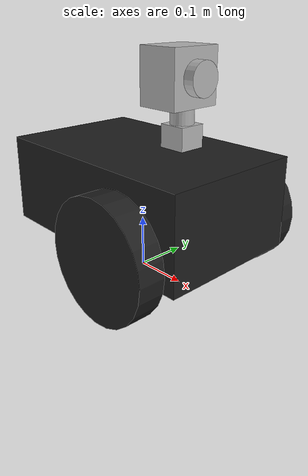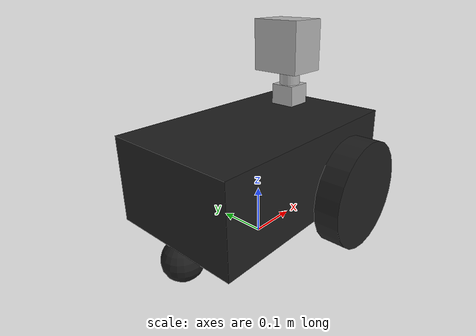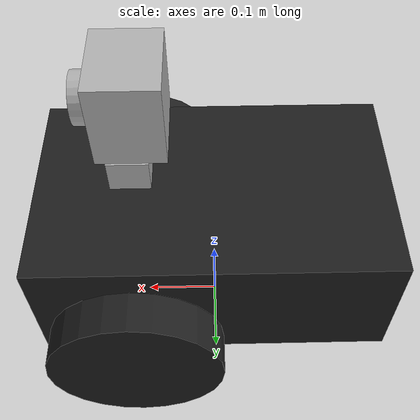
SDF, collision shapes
<?xml version="1.0" ?>
<sdf version="1.5">
  <model name="robot">
    <link name="base_link">
      <pose>0 0 0.16 0 0 0</pose>
      <inertial>
        <mass>5.67</mass>
        <inertia>
          <ixx>0.07</ixx>
          <iyy>0.08</iyy>
          <izz>0.10</izz>
          <ixy>0</ixy>
          <ixz>0</ixz>
          <iyz>0</iyz>
        </inertia>
      </inertial>
      <collision name="collision">
        <geometry>
          <box>
            <size>0.445 0.277 0.17</size>
          </box>
        </geometry>
      </collision>
      <collision name="castor_collision">
        <pose>-0.200 0 -0.12 0 0 0</pose>
        <geometry>
          <sphere>
            <radius>0.04</radius>
          </sphere>
        </geometry>
        <surface>
          <friction>
            <ode>
              <mu>0</mu>
              <mu2>0</mu2>
            </ode>
          </friction>
        </surface>
      </collision>
      <visual name="visual">
        <pose>0 0 0.04 0 0 0</pose>
        <geometry>
          <mesh>
            <uri>model://pioneer2dx_ros/meshes/chassis.dae</uri>
          </mesh>
        </geometry>
      </visual>
      <visual name="castor_visual">
        <pose>-0.200 0 -0.12 0 0 0</pose>
        <geometry>
          <sphere>
            <radius>0.04</radius>
          </sphere>
        </geometry>
        <material>
          <script>
            <uri>file://media/materials/scripts/gazebo.material</uri>
            <name>Gazebo/FlatBlack</name>
          </script>
        </material>
      </visual>
    </link>
    <link name="right_wheel">
      <pose>0.1 -.17 0.11 0 1.5707 1.5707</pose>
      <inertial>
        <mass>1.5</mass>
        <inertia>
          <ixx>0.0051</ixx>
          <iyy>0.0051</iyy>
          <izz>0.0090</izz>
          <ixy>0</ixy>
          <ixz>0</ixz>
          <iyz>0</iyz>
        </inertia>
      </inertial>
      <collision name="collision">
        <geometry>
          <cylinder>
            <radius>0.11</radius>
            <length>0.05</length>
          </cylinder>
        </geometry>
        <surface>
          <friction>
            <ode>
              <mu>1.0</mu>
              <mu2>1.0</mu2>
            </ode>
          </friction>
        </surface>
      </collision>
      <visual name="visual">
        <geometry>
          <cylinder>
            <radius>0.11</radius>
            <length>0.05</length>
          </cylinder>
        </geometry>
        <material>
          <script>
            <uri>file://media/materials/scripts/gazebo.material</uri>
            <name>Gazebo/FlatBlack</name>
          </script>
        </material>
      </visual>
    </link>
    <link name="left_wheel">
      <pose>0.1 .17 0.11 0 1.5707 1.5707</pose>
      <inertial>
        <mass>1.5</mass>
        <inertia>
          <ixx>0.0051</ixx>
          <iyy>0.0051</iyy>
          <izz>0.0090</izz>
          <ixy>0</ixy>
          <ixz>0</ixz>
          <iyz>0</iyz>
        </inertia>
      </inertial>
      <collision name="collision">
        <geometry>
          <cylinder>
            <radius>0.11</radius>
            <length>0.05</length>
          </cylinder>
        </geometry>
        <surface>
          <friction>
            <ode>
              <mu>1.0</mu>
              <mu2>1.0</mu2>
            </ode>
          </friction>
        </surface>
      </collision>
      <visual name="visual">
        <geometry>
          <cylinder>
            <radius>0.11</radius>
            <length>0.05</length>
          </cylinder>
        </geometry>
        <material>
          <script>
            <uri>file://media/materials/scripts/gazebo.material</uri>
            <name>Gazebo/FlatBlack</name>
          </script>
        </material>
      </visual>
    </link>
    <joint type="revolute" name="left_wheel_hinge">
      <pose>0 0 -0.03 0 0 0</pose>
      <child>left_wheel</child>
      <parent>base_link</parent>
      <axis>
        <xyz>0 1 0</xyz>
        <use_parent_model_frame>true</use_parent_model_frame>
      </axis>
    </joint>
    <joint type="revolute" name="right_wheel_hinge">
      <pose>0 0 0.03 0 0 0</pose>
      <child>right_wheel</child>
      <parent>base_link</parent>
      <axis>
        <xyz>0 1 0</xyz>
        <use_parent_model_frame>true</use_parent_model_frame>
      </axis>
    </joint>

<!-- Camera (hight is 100mm) -->
    <link name="camera_link">
      <pose>0.1 0 0.383 0 0 0</pose>
      <audio_sink /> <!-- Camera and microphone should be combined -->
      <inertial>
        <mass>0.1</mass>
        <inertia>
          <ixx>0.000166667</ixx>
          <iyy>0.000166667</iyy>
          <izz>0.000166667</izz>
        </inertia>
      </inertial>
      <collision name="collision-box">
        <pose>-0.01 0 0 0 0 0</pose>
        <geometry>
          <box>
            <size>0.08 0.1 0.1</size>
          </box>
        </geometry>
      </collision>
      <collision name="collision-lens">
        <pose>0.04 0 0 0 1.57 0</pose>
        <geometry>
          <cylinder>
            <radius>0.03</radius>
            <length>0.02</length>
          </cylinder>
        </geometry>
      </collision>
      <visual name="visual-box">
        <pose>-0.01 0 0 0 0 0</pose>
        <geometry>
          <box>
            <size>0.08 0.1 0.1</size>
          </box>
        </geometry>
        <material>
          <ambient>0.3 0.3 0.3 1</ambient>
          <diffuse>0.7 0.7 0.7 1</diffuse>
          <specular>0.1 0.1 0.1 1</specular>
          <emissive>0 0 0 0</emissive>
        </material>
      </visual>
      <visual name="visual-lens">
        <pose>0.04 0 0 0 1.57 0</pose>
        <geometry>
          <cylinder>
            <radius>0.03</radius>
            <length>0.02</length>
          </cylinder>
        </geometry>
        <material>
          <ambient>0 0 0 1</ambient>
          <diffuse>0 0 0 1</diffuse>
          <specular>0.1 0.1 0.1 1</specular>
          <emissive>0 0 0 0</emissive>
        </material>
      </visual>
<!-- RGB CAMERA -->
      <sensor type="camera" name="camera">
        <update_rate>20</update_rate>
        <visualize>false</visualize>
        <camera name="camera">
          <horizontal_fov>1.047</horizontal_fov>
          <image>
            <width>320</width>
            <height>240</height>
            <format>R8G8B8</format>
          </image>
          <clip>
            <near>0.1</near>
            <far>100</far>
          </clip>
          <!-- Noise is sampled independently per pixel on each frame.
               That pixel's noise value is added to each of its color
               channels, which at that point lie in the range [0,1]. -->
          <noise>
            <type>gaussian</type>
            <mean>0.0</mean>
            <stddev>0.007</stddev>
          </noise>
        </camera>
        <plugin name="camera_controller" filename="libgazebo_ros_camera.so">
          <alwaysOn>true</alwaysOn>
          <updateRate>0.0</updateRate>
          <cameraName>camera/rgb</cameraName>
          <imageTopicName>image_raw</imageTopicName>
          <cameraInfoTopicName>camera_info</cameraInfoTopicName>
          <frameName>camera_link</frameName>
          <hackBaseline>0.07</hackBaseline>
          <distortionK1>0.0</distortionK1>
          <distortionK2>0.0</distortionK2>
          <distortionK3>0.0</distortionK3>
          <distortionT1>0.0</distortionT1>
          <distortionT2>0.0</distortionT2>
        </plugin>
      </sensor>
<!-- THERMAL CAMERA -->
      <sensor type="camera" name="thermal_camera_sensor">
        <update_rate>10</update_rate>
        <camera name="camera_ros_thermal">
          <horizontal_fov>1.047</horizontal_fov>
          <image>
            <width>160</width>
            <height>120</height>
            <format>R8G8B8</format>
          </image>
          <clip>
            <near>0.1</near>
            <far>100</far>
          </clip>
        </camera>
        <plugin name="thermal_camera_controller"
                filename="libgazebo_ros_thermal_camera_pink.so">
          <alwaysOn>true</alwaysOn>
          <updateRate>10</updateRate>
          <imageTopicName>camera/thermal/image_raw</imageTopicName>
          <cameraInfoTopicName>camera/thermal/camera_info</cameraInfoTopicName>
          <frameName>camera_link</frameName>
        </plugin>
      </sensor>
    </link>
    <joint name="camera_joint" type="revolute">
      <parent>base_link</parent>
      <child>camera_link</child>
      <pose>0 0 0 0 0 0</pose>
      <axis>
        <xyz>0 0 1</xyz>
        <limit>
          <lower>0</lower>
          <upper>0</upper>
        </limit>
      </axis>
    </joint>

<!-- Hokuyo (hight is 70mm) -->
    <link name="hokuyo_link">
      <pose>0.1 0 0.298 0 0 0</pose>
      <inertial>
        <mass>0.1</mass>
        <inertia>
          <ixx>0.6205208333e-04</ixx>
          <iyy>0.6205208333e-04</iyy>
          <izz>4.1927083333e-05</izz>
        </inertia>
      </inertial>
      <visual name="visual-base">
        <pose>0 0 -0.0145 0 0 0</pose>
        <geometry>
          <box>
            <size>0.05 0.05 0.041</size>
          </box>
        </geometry>
        <material>
          <ambient>0.3 0.3 0.3 1</ambient>
          <diffuse>0.7 0.7 0.7 1</diffuse>
          <specular>0.1 0.1 0.1 1</specular>
          <emissive>0 0 0 0</emissive>
        </material>
      </visual>
      <visual name="visual-top">
        <pose>0 0 0.0205 0 0 0</pose>
        <geometry>
          <cylinder>
            <radius>0.021</radius>
            <length>0.029</length>
          </cylinder>
        </geometry>
        <material>
          <ambient>0 0 0 1</ambient>
          <diffuse>0 0 0 1</diffuse>
          <specular>0.1 0.1 0.1 1</specular>
          <emissive>0 0 0 0</emissive>
        </material>
      </visual>
      <visual name="visual-top-back">
        <pose>-0.02 0 0.019 0 0 0</pose>
        <geometry>
          <box>
            <size>0.01 0.01 0.025</size>
          </box>
        </geometry>
        <material>
          <ambient>0.1 0.1 0.1 1</ambient>
          <diffuse>0.3 0.3 0.3 1</diffuse>
          <specular>0.1 0.1 0.1 1</specular>
          <emissive>0 0 0 0</emissive>
        </material>
      </visual>
      <collision name="collision-base">
        <pose>0 0 -0.0145 0 0 0</pose>
        <geometry>
          <box>
            <size>0.05 0.05 0.041</size>
          </box>
        </geometry>
      </collision>
      <collision name="collision-top">
        <pose>0 0 0.0205 0 0 0</pose>
        <geometry>
          <cylinder>
            <radius>0.021</radius>
            <length>0.029</length>
          </cylinder>
        </geometry>
      </collision>
      <sensor type="ray" name="lms200">
        <always_on>true</always_on>
        <update_rate>30</update_rate>
        <pose>0 0 0.01815 0 0 0</pose> <!-- From URG04LX Spec -->
        <visualize>false</visualize>
        <ray>
          <scan>
            <horizontal>
              <samples>1040</samples>
              <resolution>1</resolution>
              <min_angle>-2.268928</min_angle> <!-- 90deg: -1.570796 -->
              <max_angle>2.268928</max_angle>  <!-- 90deg: 1.570796  -->
            </horizontal>
          </scan>
          <range>
            <min>0.15</min>
            <max>5.6</max> <!-- From URG04LX Spec -->
            <resolution>0.001</resolution> <!-- From URG04LX Spec -->
          </range>
        </ray>
        <plugin name="gazebo_ros_hokuyo_controller" filename="libgazebo_ros_laser.so">
          <topicName>scan</topicName>
          <gaussianNoise>0.005</gaussianNoise>
          <alwaysOn>true</alwaysOn>
          <updateRate>30</updateRate>
          <frameName>hokuyo_link</frameName>
        </plugin>
      </sensor>
    </link>
    <joint name="hokuyo_joint" type="revolute">
      <parent>base_link</parent>
      <child>hokuyo_link</child>
      <pose>0 0 0 0 0 0</pose>
      <axis>
        <xyz>0 0 1</xyz>
        <limit>
          <lower>0</lower>
          <upper>0</upper>
        </limit>
      </axis>
    </joint>

    <plugin name="differential_drive_controller" filename="libgazebo_ros_diff_drive.so">
      <alwaysOn>true</alwaysOn>
      <updateRate>100.0</updateRate>
      <leftJoint>left_wheel_hinge</leftJoint>
      <rightJoint>right_wheel_hinge</rightJoint>
      <wheelSeparation>0.4</wheelSeparation>
      <wheelDiameter>0.215</wheelDiameter>
      <robotBaseFrame>base_link</robotBaseFrame>
      <torque>200</torque>
      <commandTopic>cmd_vel</commandTopic>
      <odometryTopic>odom</odometryTopic>
      <odometryFrame>odom</odometryFrame>
      <broadcastTF>true</broadcastTF>

      <legacyMode>0</legacyMode>

    </plugin>

    <plugin name="gazebo_ros_control" filename="libgazebo_ros_control.so">
      <robotSimType>gazebo_ros_control/DefaultRobotHWSim</robotSimType>
    </plugin>

  </model>
</sdf>
